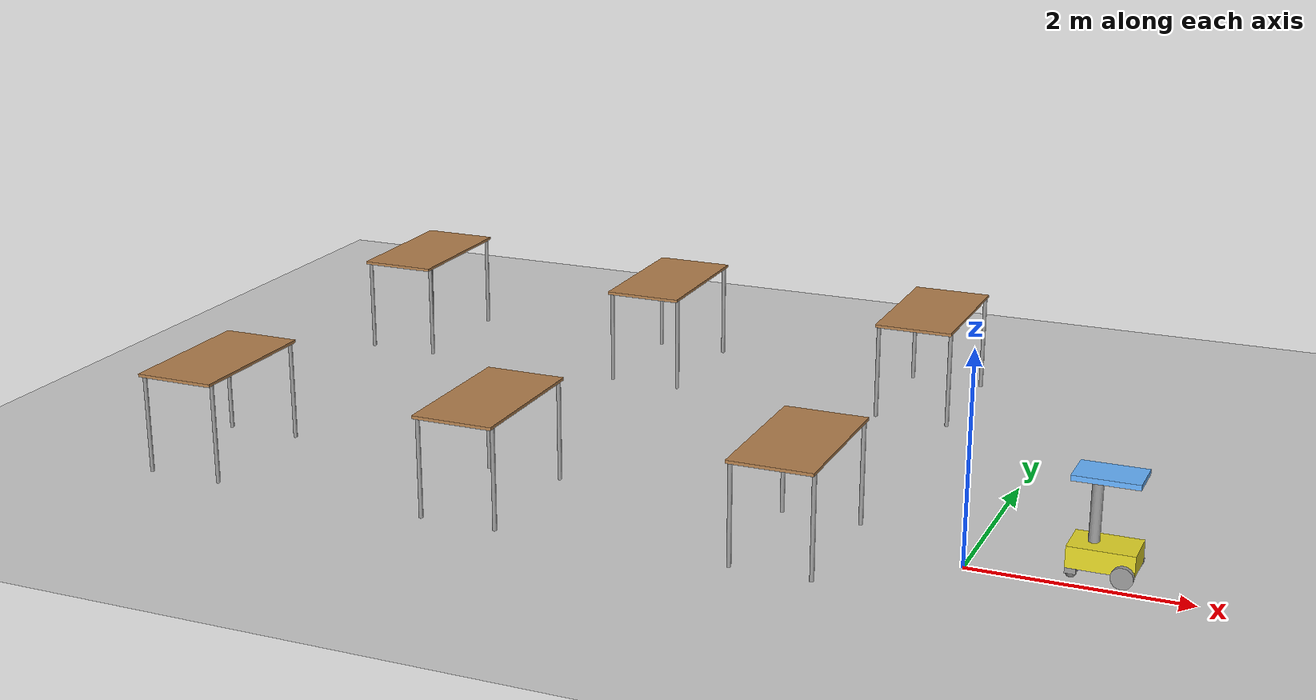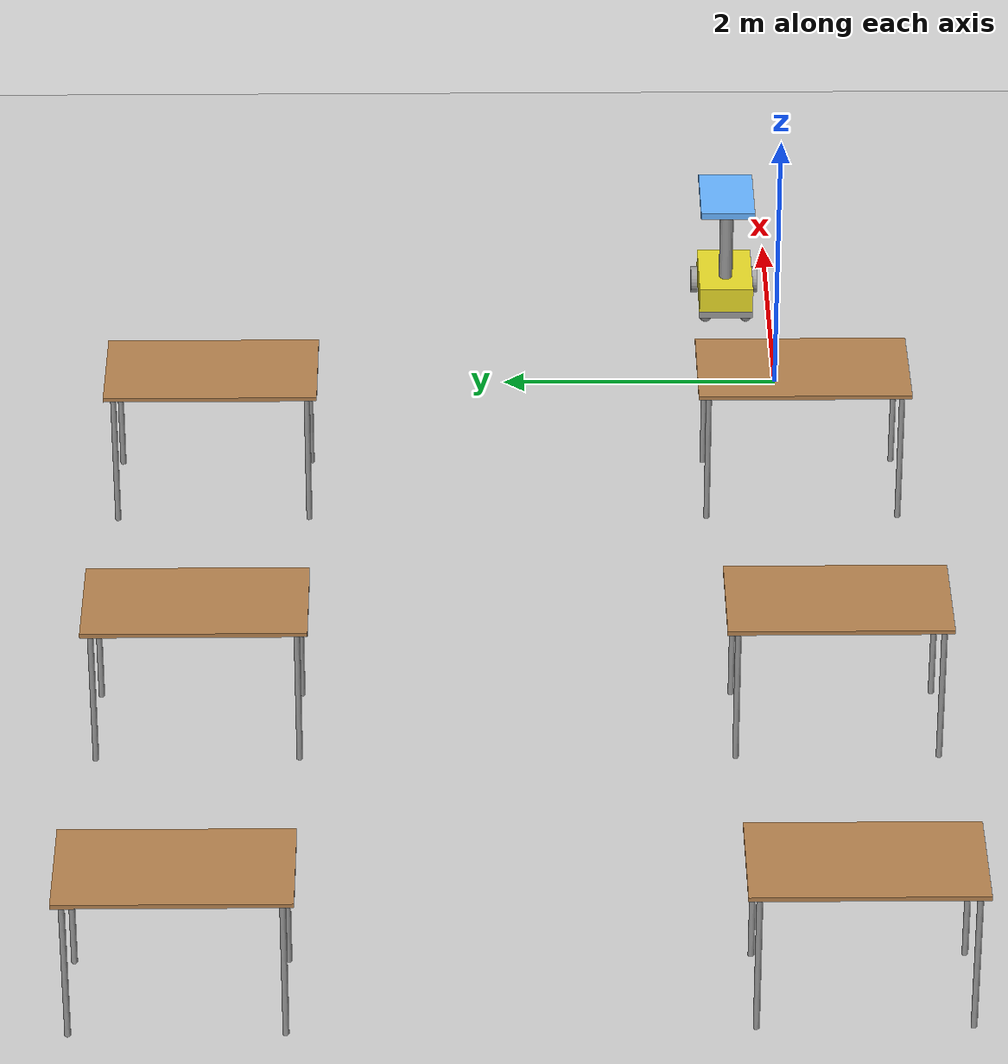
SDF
<sdf version="1.6">
 <world name="default">
  <model name="ground_plane">
   <static>1</static>
   <link name="link">
    <collision name="collision">
     <geometry><plane><normal>0 0 1</normal><size>100 100</size></plane></geometry>
     <surface><friction><ode><mu>100</mu><mu2>50</mu2></ode></friction></surface>
    </collision>
    <visual name="visual">
     <cast_shadows>0</cast_shadows>
     <geometry><plane><normal>0 0 1</normal><size>100 100</size></plane></geometry>
     <material>
      <script><uri>file://media/materials/scripts/gazebo.material</uri><name>Gazebo/Grey</name></script>
     </material>
    </visual>
   </link>
  </model>
  <model name="table">
   <static>1</static>
   <link name="link">
    <collision name="surface">
     <pose>0 0 1 0 -0 0</pose>
     <geometry><box><size>1.5 0.8 0.03</size></box></geometry>
     <surface><friction><ode><mu>0.6</mu><mu2>0.6</mu2></ode></friction></surface>
    </collision>
    <visual name="visual1">
     <pose>0 0 1 0 -0 0</pose>
     <geometry><box><size>1.5 0.8 0.03</size></box></geometry>
     <material>
      <script><uri>file://media/materials/scripts/gazebo.material</uri><name>Gazebo/Wood</name></script>
     </material>
    </visual>
    <collision name="front_left_leg">
     <pose>0.68 0.38 0.5 0 -0 0</pose>
     <geometry><cylinder><radius>0.02</radius><length>1</length></cylinder></geometry>
    </collision>
    <visual name="front_left_leg">
     <pose>0.68 0.38 0.5 0 -0 0</pose>
     <geometry><cylinder><radius>0.02</radius><length>1</length></cylinder></geometry>
     <material>
      <script><uri>file://media/materials/scripts/gazebo.material</uri><name>Gazebo/Grey</name></script>
     </material>
    </visual>
    <collision name="front_right_leg">
     <pose>0.68 -0.38 0.5 0 -0 0</pose>
     <geometry><cylinder><radius>0.02</radius><length>1</length></cylinder></geometry>
    </collision>
    <visual name="front_right_leg">
     <pose>0.68 -0.38 0.5 0 -0 0</pose>
     <geometry><cylinder><radius>0.02</radius><length>1</length></cylinder></geometry>
     <material>
      <script><uri>file://media/materials/scripts/gazebo.material</uri><name>Gazebo/Grey</name></script>
     </material>
    </visual>
    <collision name="back_right_leg">
     <pose>-0.68 -0.38 0.5 0 -0 0</pose>
     <geometry><cylinder><radius>0.02</radius><length>1</length></cylinder></geometry>
    </collision>
    <visual name="back_right_leg">
     <pose>-0.68 -0.38 0.5 0 -0 0</pose>
     <geometry><cylinder><radius>0.02</radius><length>1</length></cylinder></geometry>
     <material>
      <script><uri>file://media/materials/scripts/gazebo.material</uri><name>Gazebo/Grey</name></script>
     </material>
    </visual>
    <collision name="back_left_leg">
     <pose>-0.68 0.38 0.5 0 -0 0</pose>
     <geometry><cylinder><radius>0.02</radius><length>1</length></cylinder></geometry>
    </collision>
    <visual name="back_left_leg">
     <pose>-0.68 0.38 0.5 0 -0 0</pose>
     <geometry><cylinder><radius>0.02</radius><length>1</length></cylinder></geometry>
     <material>
      <script><uri>file://media/materials/scripts/gazebo.material</uri><name>Gazebo/Grey</name></script>
     </material>
    </visual>
   </link>
   <pose>-7.5 4.1 0 0 -0 1.5707</pose>
  </model>
  <model name="table_clone">
   <static>1</static>
   <link name="link">
    <collision name="surface">
     <pose>0 0 1 0 -0 0</pose>
     <geometry><box><size>1.5 0.8 0.03</size></box></geometry>
     <surface><friction><ode><mu>0.6</mu><mu2>0.6</mu2></ode></friction></surface>
    </collision>
    <visual name="visual1">
     <pose>0 0 1 0 -0 0</pose>
     <geometry><box><size>1.5 0.8 0.03</size></box></geometry>
     <material>
      <script><uri>file://media/materials/scripts/gazebo.material</uri><name>Gazebo/Wood</name></script>
     </material>
    </visual>
    <collision name="front_left_leg">
     <pose>0.68 0.38 0.5 0 -0 0</pose>
     <geometry><cylinder><radius>0.02</radius><length>1</length></cylinder></geometry>
    </collision>
    <visual name="front_left_leg">
     <pose>0.68 0.38 0.5 0 -0 0</pose>
     <geometry><cylinder><radius>0.02</radius><length>1</length></cylinder></geometry>
     <material>
      <script><uri>file://media/materials/scripts/gazebo.material</uri><name>Gazebo/Grey</name></script>
     </material>
    </visual>
    <collision name="front_right_leg">
     <pose>0.68 -0.38 0.5 0 -0 0</pose>
     <geometry><cylinder><radius>0.02</radius><length>1</length></cylinder></geometry>
    </collision>
    <visual name="front_right_leg">
     <pose>0.68 -0.38 0.5 0 -0 0</pose>
     <geometry><cylinder><radius>0.02</radius><length>1</length></cylinder></geometry>
     <material>
      <script><uri>file://media/materials/scripts/gazebo.material</uri><name>Gazebo/Grey</name></script>
     </material>
    </visual>
    <collision name="back_right_leg">
     <pose>-0.68 -0.38 0.5 0 -0 0</pose>
     <geometry><cylinder><radius>0.02</radius><length>1</length></cylinder></geometry>
    </collision>
    <visual name="back_right_leg">
     <pose>-0.68 -0.38 0.5 0 -0 0</pose>
     <geometry><cylinder><radius>0.02</radius><length>1</length></cylinder></geometry>
     <material>
      <script><uri>file://media/materials/scripts/gazebo.material</uri><name>Gazebo/Grey</name></script>
     </material>
    </visual>
    <collision name="back_left_leg">
     <pose>-0.68 0.38 0.5 0 -0 0</pose>
     <geometry><cylinder><radius>0.02</radius><length>1</length></cylinder></geometry>
    </collision>
    <visual name="back_left_leg">
     <pose>-0.68 0.38 0.5 0 -0 0</pose>
     <geometry><cylinder><radius>0.02</radius><length>1</length></cylinder></geometry>
     <material>
      <script><uri>file://media/materials/scripts/gazebo.material</uri><name>Gazebo/Grey</name></script>
     </material>
    </visual>
   </link>
   <pose>-4.48568 4.08241 0 0 -0 1.5707</pose>
  </model>
  <model name="table_clone_0">
   <static>1</static>
   <link name="link">
    <collision name="surface">
     <pose>0 0 1 0 -0 0</pose>
     <geometry><box><size>1.5 0.8 0.03</size></box></geometry>
     <surface><friction><ode><mu>0.6</mu><mu2>0.6</mu2></ode></friction></surface>
    </collision>
    <visual name="visual1">
     <pose>0 0 1 0 -0 0</pose>
     <geometry><box><size>1.5 0.8 0.03</size></box></geometry>
     <material>
      <script><uri>file://media/materials/scripts/gazebo.material</uri><name>Gazebo/Wood</name></script>
     </material>
    </visual>
    <collision name="front_left_leg">
     <pose>0.68 0.38 0.5 0 -0 0</pose>
     <geometry><cylinder><radius>0.02</radius><length>1</length></cylinder></geometry>
    </collision>
    <visual name="front_left_leg">
     <pose>0.68 0.38 0.5 0 -0 0</pose>
     <geometry><cylinder><radius>0.02</radius><length>1</length></cylinder></geometry>
     <material>
      <script><uri>file://media/materials/scripts/gazebo.material</uri><name>Gazebo/Grey</name></script>
     </material>
    </visual>
    <collision name="front_right_leg">
     <pose>0.68 -0.38 0.5 0 -0 0</pose>
     <geometry><cylinder><radius>0.02</radius><length>1</length></cylinder></geometry>
    </collision>
    <visual name="front_right_leg">
     <pose>0.68 -0.38 0.5 0 -0 0</pose>
     <geometry><cylinder><radius>0.02</radius><length>1</length></cylinder></geometry>
     <material>
      <script><uri>file://media/materials/scripts/gazebo.material</uri><name>Gazebo/Grey</name></script>
     </material>
    </visual>
    <collision name="back_right_leg">
     <pose>-0.68 -0.38 0.5 0 -0 0</pose>
     <geometry><cylinder><radius>0.02</radius><length>1</length></cylinder></geometry>
    </collision>
    <visual name="back_right_leg">
     <pose>-0.68 -0.38 0.5 0 -0 0</pose>
     <geometry><cylinder><radius>0.02</radius><length>1</length></cylinder></geometry>
     <material>
      <script><uri>file://media/materials/scripts/gazebo.material</uri><name>Gazebo/Grey</name></script>
     </material>
    </visual>
    <collision name="back_left_leg">
     <pose>-0.68 0.38 0.5 0 -0 0</pose>
     <geometry><cylinder><radius>0.02</radius><length>1</length></cylinder></geometry>
    </collision>
    <visual name="back_left_leg">
     <pose>-0.68 0.38 0.5 0 -0 0</pose>
     <geometry><cylinder><radius>0.02</radius><length>1</length></cylinder></geometry>
     <material>
      <script><uri>file://media/materials/scripts/gazebo.material</uri><name>Gazebo/Grey</name></script>
     </material>
    </visual>
   </link>
   <pose>-1.48282 4.08149 0 0 -0 1.5707</pose>
  </model>
  <model name="table_clone_1">
   <static>1</static>
   <link name="link">
    <collision name="surface">
     <pose>0 0 1 0 -0 0</pose>
     <geometry><box><size>1.5 0.8 0.03</size></box></geometry>
     <surface><friction><ode><mu>0.6</mu><mu2>0.6</mu2></ode></friction></surface>
    </collision>
    <visual name="visual1">
     <pose>0 0 1 0 -0 0</pose>
     <geometry><box><size>1.5 0.8 0.03</size></box></geometry>
     <material>
      <script><uri>file://media/materials/scripts/gazebo.material</uri><name>Gazebo/Wood</name></script>
     </material>
    </visual>
    <collision name="front_left_leg">
     <pose>0.68 0.38 0.5 0 -0 0</pose>
     <geometry><cylinder><radius>0.02</radius><length>1</length></cylinder></geometry>
    </collision>
    <visual name="front_left_leg">
     <pose>0.68 0.38 0.5 0 -0 0</pose>
     <geometry><cylinder><radius>0.02</radius><length>1</length></cylinder></geometry>
     <material>
      <script><uri>file://media/materials/scripts/gazebo.material</uri><name>Gazebo/Grey</name></script>
     </material>
    </visual>
    <collision name="front_right_leg">
     <pose>0.68 -0.38 0.5 0 -0 0</pose>
     <geometry><cylinder><radius>0.02</radius><length>1</length></cylinder></geometry>
    </collision>
    <visual name="front_right_leg">
     <pose>0.68 -0.38 0.5 0 -0 0</pose>
     <geometry><cylinder><radius>0.02</radius><length>1</length></cylinder></geometry>
     <material>
      <script><uri>file://media/materials/scripts/gazebo.material</uri><name>Gazebo/Grey</name></script>
     </material>
    </visual>
    <collision name="back_right_leg">
     <pose>-0.68 -0.38 0.5 0 -0 0</pose>
     <geometry><cylinder><radius>0.02</radius><length>1</length></cylinder></geometry>
    </collision>
    <visual name="back_right_leg">
     <pose>-0.68 -0.38 0.5 0 -0 0</pose>
     <geometry><cylinder><radius>0.02</radius><length>1</length></cylinder></geometry>
     <material>
      <script><uri>file://media/materials/scripts/gazebo.material</uri><name>Gazebo/Grey</name></script>
     </material>
    </visual>
    <collision name="back_left_leg">
     <pose>-0.68 0.38 0.5 0 -0 0</pose>
     <geometry><cylinder><radius>0.02</radius><length>1</length></cylinder></geometry>
    </collision>
    <visual name="back_left_leg">
     <pose>-0.68 0.38 0.5 0 -0 0</pose>
     <geometry><cylinder><radius>0.02</radius><length>1</length></cylinder></geometry>
     <material>
      <script><uri>file://media/materials/scripts/gazebo.material</uri><name>Gazebo/Grey</name></script>
     </material>
    </visual>
   </link>
   <pose>-7.46432 -0.193454 0 0 -0 1.5707</pose>
  </model>
  <model name="table_clone_2">
   <static>1</static>
   <link name="link">
    <collision name="surface">
     <pose>0 0 1 0 -0 0</pose>
     <geometry><box><size>1.5 0.8 0.03</size></box></geometry>
     <surface><friction><ode><mu>0.6</mu><mu2>0.6</mu2></ode></friction></surface>
    </collision>
    <visual name="visual1">
     <pose>0 0 1 0 -0 0</pose>
     <geometry><box><size>1.5 0.8 0.03</size></box></geometry>
     <material>
      <script><uri>file://media/materials/scripts/gazebo.material</uri><name>Gazebo/Wood</name></script>
     </material>
    </visual>
    <collision name="front_left_leg">
     <pose>0.68 0.38 0.5 0 -0 0</pose>
     <geometry><cylinder><radius>0.02</radius><length>1</length></cylinder></geometry>
    </collision>
    <visual name="front_left_leg">
     <pose>0.68 0.38 0.5 0 -0 0</pose>
     <geometry><cylinder><radius>0.02</radius><length>1</length></cylinder></geometry>
     <material>
      <script><uri>file://media/materials/scripts/gazebo.material</uri><name>Gazebo/Grey</name></script>
     </material>
    </visual>
    <collision name="front_right_leg">
     <pose>0.68 -0.38 0.5 0 -0 0</pose>
     <geometry><cylinder><radius>0.02</radius><length>1</length></cylinder></geometry>
    </collision>
    <visual name="front_right_leg">
     <pose>0.68 -0.38 0.5 0 -0 0</pose>
     <geometry><cylinder><radius>0.02</radius><length>1</length></cylinder></geometry>
     <material>
      <script><uri>file://media/materials/scripts/gazebo.material</uri><name>Gazebo/Grey</name></script>
     </material>
    </visual>
    <collision name="back_right_leg">
     <pose>-0.68 -0.38 0.5 0 -0 0</pose>
     <geometry><cylinder><radius>0.02</radius><length>1</length></cylinder></geometry>
    </collision>
    <visual name="back_right_leg">
     <pose>-0.68 -0.38 0.5 0 -0 0</pose>
     <geometry><cylinder><radius>0.02</radius><length>1</length></cylinder></geometry>
     <material>
      <script><uri>file://media/materials/scripts/gazebo.material</uri><name>Gazebo/Grey</name></script>
     </material>
    </visual>
    <collision name="back_left_leg">
     <pose>-0.68 0.38 0.5 0 -0 0</pose>
     <geometry><cylinder><radius>0.02</radius><length>1</length></cylinder></geometry>
    </collision>
    <visual name="back_left_leg">
     <pose>-0.68 0.38 0.5 0 -0 0</pose>
     <geometry><cylinder><radius>0.02</radius><length>1</length></cylinder></geometry>
     <material>
      <script><uri>file://media/materials/scripts/gazebo.material</uri><name>Gazebo/Grey</name></script>
     </material>
    </visual>
   </link>
   <pose>-4.49511 -0.186585 0 0 -0 1.5707</pose>
  </model>
  <model name="table_clone_3">
   <static>1</static>
   <link name="link">
    <collision name="surface">
     <pose>0 0 1 0 -0 0</pose>
     <geometry><box><size>1.5 0.8 0.03</size></box></geometry>
     <surface><friction><ode><mu>0.6</mu><mu2>0.6</mu2></ode></friction></surface>
    </collision>
    <visual name="visual1">
     <pose>0 0 1 0 -0 0</pose>
     <geometry><box><size>1.5 0.8 0.03</size></box></geometry>
     <material>
      <script><uri>file://media/materials/scripts/gazebo.material</uri><name>Gazebo/Wood</name></script>
     </material>
    </visual>
    <collision name="front_left_leg">
     <pose>0.68 0.38 0.5 0 -0 0</pose>
     <geometry><cylinder><radius>0.02</radius><length>1</length></cylinder></geometry>
    </collision>
    <visual name="front_left_leg">
     <pose>0.68 0.38 0.5 0 -0 0</pose>
     <geometry><cylinder><radius>0.02</radius><length>1</length></cylinder></geometry>
     <material>
      <script><uri>file://media/materials/scripts/gazebo.material</uri><name>Gazebo/Grey</name></script>
     </material>
    </visual>
    <collision name="front_right_leg">
     <pose>0.68 -0.38 0.5 0 -0 0</pose>
     <geometry><cylinder><radius>0.02</radius><length>1</length></cylinder></geometry>
    </collision>
    <visual name="front_right_leg">
     <pose>0.68 -0.38 0.5 0 -0 0</pose>
     <geometry><cylinder><radius>0.02</radius><length>1</length></cylinder></geometry>
     <material>
      <script><uri>file://media/materials/scripts/gazebo.material</uri><name>Gazebo/Grey</name></script>
     </material>
    </visual>
    <collision name="back_right_leg">
     <pose>-0.68 -0.38 0.5 0 -0 0</pose>
     <geometry><cylinder><radius>0.02</radius><length>1</length></cylinder></geometry>
    </collision>
    <visual name="back_right_leg">
     <pose>-0.68 -0.38 0.5 0 -0 0</pose>
     <geometry><cylinder><radius>0.02</radius><length>1</length></cylinder></geometry>
     <material>
      <script><uri>file://media/materials/scripts/gazebo.material</uri><name>Gazebo/Grey</name></script>
     </material>
    </visual>
    <collision name="back_left_leg">
     <pose>-0.68 0.38 0.5 0 -0 0</pose>
     <geometry><cylinder><radius>0.02</radius><length>1</length></cylinder></geometry>
    </collision>
    <visual name="back_left_leg">
     <pose>-0.68 0.38 0.5 0 -0 0</pose>
     <geometry><cylinder><radius>0.02</radius><length>1</length></cylinder></geometry>
     <material>
      <script><uri>file://media/materials/scripts/gazebo.material</uri><name>Gazebo/Grey</name></script>
     </material>
    </visual>
   </link>
   <pose>-1.49674 -0.105273 0 0 -0 1.5707</pose>
  </model>
  <model name="deliver_robot_5">
   <link name="link_0_clone">
    <pose>-0.002083 -0 0.033333 -0 -0 -0</pose>
    <inertial>
     <mass>1</mass>
     <inertia>
      <ixx>0.166667</ixx>
      <ixy>0</ixy>
      <ixz>0</ixz>
      <iyy>0.166667</iyy>
      <iyz>0</iyz>
      <izz>0.166667</izz>
     </inertia>
    </inertial>
    <visual name="visual">
     <geometry><box><size>0.6 0.4 0.2</size></box></geometry>
     <material>
      <lighting>1</lighting>
      <script><uri>file://media/materials/scripts/gazebo.material</uri><name>Gazebo/Yellow</name></script>
      <shader type="pixel"><normal_map>__default__</normal_map></shader>
      <ambient>0.2 0.8 1 1</ambient>
      <diffuse>0.4 0.7 1 1</diffuse>
      <specular>0.2 0.2 0.2 1</specular>
      <emissive>0 0 0 1</emissive>
     </material>
    </visual>
    <collision name="collision">
     <geometry><box><size>0.6 0.4 0.2</size></box></geometry>
     <surface>
      <friction>
       <ode><mu>1</mu><mu2>1</mu2><fdir1>0 0 0</fdir1><slip1>0</slip1><slip2>0</slip2></ode>
       <torsional>
        <coefficient>1</coefficient>
        <patch_radius>0</patch_radius>
        <surface_radius>0</surface_radius>
        <use_patch_radius>1</use_patch_radius>
        <ode><slip>0</slip></ode>
       </torsional>
      </friction>
      <bounce><restitution_coefficient>0</restitution_coefficient><threshold>1e+06</threshold></bounce>
      <contact>
       <collide_without_contact>0</collide_without_contact>
       <collide_without_contact_bitmask>1</collide_without_contact_bitmask>
       <collide_bitmask>1</collide_bitmask>
       <ode>
        <soft_cfm>0</soft_cfm>
        <soft_erp>0.2</soft_erp>
        <kp>1e+13</kp>
        <kd>1</kd>
        <max_vel>0.01</max_vel>
        <min_depth>0</min_depth>
       </ode>
       <bullet>
        <split_impulse>1</split_impulse>
        <split_impulse_penetration_threshold>-0.01</split_impulse_penetration_threshold>
        <soft_cfm>0</soft_cfm>
        <soft_erp>0.2</soft_erp>
        <kp>1e+13</kp>
        <kd>1</kd>
       </bullet>
      </contact>
     </surface>
    </collision>
   </link>
   <link name="link_1_clone">
    <pose>0.197917 -0.22501 -0.066667 1.5707 -0 0</pose>
    <inertial>
     <mass>1</mass>
     <inertia><ixx>0.145833</ixx><ixy>0</ixy><ixz>0</ixz><iyy>0.145833</iyy><iyz>0</iyz><izz>0.125</izz></inertia>
    </inertial>
    <visual name="visual">
     <geometry><cylinder><radius>0.1</radius><length>0.05</length></cylinder></geometry>
     <material>
      <lighting>1</lighting>
      <script><uri>file://media/materials/scripts/gazebo.material</uri><name>Gazebo/Grey</name></script>
      <shader type="pixel"><normal_map>__default__</normal_map></shader>
      <ambient>0.3 0.3 0.3 1</ambient>
      <diffuse>0.7 0.7 0.7 1</diffuse>
      <specular>0.01 0.01 0.01 1</specular>
      <emissive>0 0 0 1</emissive>
     </material>
    </visual>
    <collision name="collision">
     <geometry><cylinder><radius>0.1</radius><length>0.05</length></cylinder></geometry>
     <surface>
      <friction>
       <ode><mu>1</mu><mu2>1</mu2><fdir1>0 0 0</fdir1><slip1>0</slip1><slip2>0</slip2></ode>
       <torsional>
        <coefficient>1</coefficient>
        <patch_radius>0</patch_radius>
        <surface_radius>0</surface_radius>
        <use_patch_radius>1</use_patch_radius>
        <ode><slip>0</slip></ode>
       </torsional>
      </friction>
      <bounce><restitution_coefficient>0</restitution_coefficient><threshold>1e+06</threshold></bounce>
      <contact>
       <collide_without_contact>0</collide_without_contact>
       <collide_without_contact_bitmask>1</collide_without_contact_bitmask>
       <collide_bitmask>1</collide_bitmask>
       <ode>
        <soft_cfm>0</soft_cfm>
        <soft_erp>0.2</soft_erp>
        <kp>1e+13</kp>
        <kd>1</kd>
        <max_vel>0.01</max_vel>
        <min_depth>0</min_depth>
       </ode>
       <bullet>
        <split_impulse>1</split_impulse>
        <split_impulse_penetration_threshold>-0.01</split_impulse_penetration_threshold>
        <soft_cfm>0</soft_cfm>
        <soft_erp>0.2</soft_erp>
        <kp>1e+13</kp>
        <kd>1</kd>
       </bullet>
      </contact>
     </surface>
    </collision>
   </link>
   <link name="link_1_clone_0">
    <pose>0.197917 0.22501 -0.066667 1.5707 -0 0</pose>
    <inertial>
     <mass>1</mass>
     <inertia><ixx>0.145833</ixx><ixy>0</ixy><ixz>0</ixz><iyy>0.145833</iyy><iyz>0</iyz><izz>0.125</izz></inertia>
    </inertial>
    <visual name="visual">
     <geometry><cylinder><radius>0.1</radius><length>0.05</length></cylinder></geometry>
     <material>
      <lighting>1</lighting>
      <script><uri>file://media/materials/scripts/gazebo.material</uri><name>Gazebo/Grey</name></script>
      <shader type="pixel"><normal_map>__default__</normal_map></shader>
      <ambient>0.3 0.3 0.3 1</ambient>
      <diffuse>0.7 0.7 0.7 1</diffuse>
      <specular>0.01 0.01 0.01 1</specular>
      <emissive>0 0 0 1</emissive>
     </material>
    </visual>
    <collision name="collision">
     <geometry><cylinder><radius>0.1</radius><length>0.05</length></cylinder></geometry>
     <surface>
      <friction>
       <ode><mu>1</mu><mu2>1</mu2><fdir1>0 0 0</fdir1><slip1>0</slip1><slip2>0</slip2></ode>
       <torsional>
        <coefficient>1</coefficient>
        <patch_radius>0</patch_radius>
        <surface_radius>0</surface_radius>
        <use_patch_radius>1</use_patch_radius>
        <ode><slip>0</slip></ode>
       </torsional>
      </friction>
      <bounce><restitution_coefficient>0</restitution_coefficient><threshold>1e+06</threshold></bounce>
      <contact>
       <collide_without_contact>0</collide_without_contact>
       <collide_without_contact_bitmask>1</collide_without_contact_bitmask>
       <collide_bitmask>1</collide_bitmask>
       <ode>
        <soft_cfm>0</soft_cfm>
        <soft_erp>0.2</soft_erp>
        <kp>1e+13</kp>
        <kd>1</kd>
        <max_vel>0.01</max_vel>
        <min_depth>0</min_depth>
       </ode>
       <bullet>
        <split_impulse>1</split_impulse>
        <split_impulse_penetration_threshold>-0.01</split_impulse_penetration_threshold>
        <soft_cfm>0</soft_cfm>
        <soft_erp>0.2</soft_erp>
        <kp>1e+13</kp>
        <kd>1</kd>
       </bullet>
      </contact>
     </surface>
    </collision>
   </link>
   <link name="link_2_clone">
    <pose>-0.252083 -0.15 -0.116667 -0 -0 -0</pose>
    <inertial>
     <mass>1</mass>
     <inertia><ixx>0.1</ixx><ixy>0</ixy><ixz>0</ixz><iyy>0.1</iyy><iyz>0</iyz><izz>0.1</izz></inertia>
    </inertial>
    <visual name="visual">
     <geometry><sphere><radius>0.05</radius></sphere></geometry>
     <material>
      <lighting>1</lighting>
      <script><uri>file://media/materials/scripts/gazebo.material</uri><name>Gazebo/Grey</name></script>
      <shader type="pixel"><normal_map>__default__</normal_map></shader>
      <ambient>1 1 1 1</ambient>
      <diffuse>0.7 0.7 0.7 1</diffuse>
      <specular>0.01 0.01 0.01 1</specular>
      <emissive>0 0 0 1</emissive>
     </material>
    </visual>
    <collision name="collision">
     <geometry><sphere><radius>0.05</radius></sphere></geometry>
     <surface>
      <friction>
       <ode><mu>1</mu><mu2>1</mu2><fdir1>0 0 0</fdir1><slip1>0</slip1><slip2>0</slip2></ode>
       <torsional>
        <coefficient>1</coefficient>
        <patch_radius>0</patch_radius>
        <surface_radius>0</surface_radius>
        <use_patch_radius>1</use_patch_radius>
        <ode><slip>0</slip></ode>
       </torsional>
      </friction>
      <bounce><restitution_coefficient>0</restitution_coefficient><threshold>1e+06</threshold></bounce>
      <contact>
       <collide_without_contact>0</collide_without_contact>
       <collide_without_contact_bitmask>1</collide_without_contact_bitmask>
       <collide_bitmask>1</collide_bitmask>
       <ode>
        <soft_cfm>0</soft_cfm>
        <soft_erp>0.2</soft_erp>
        <kp>1e+13</kp>
        <kd>1</kd>
        <max_vel>0.01</max_vel>
        <min_depth>0</min_depth>
       </ode>
       <bullet>
        <split_impulse>1</split_impulse>
        <split_impulse_penetration_threshold>-0.01</split_impulse_penetration_threshold>
        <soft_cfm>0</soft_cfm>
        <soft_erp>0.2</soft_erp>
        <kp>1e+13</kp>
        <kd>1</kd>
       </bullet>
      </contact>
     </surface>
    </collision>
   </link>
   <link name="link_2_clone_0">
    <pose>-0.252083 0.15 -0.116667 -0 -0 -0</pose>
    <inertial>
     <mass>1</mass>
     <inertia><ixx>0.1</ixx><ixy>0</ixy><ixz>0</ixz><iyy>0.1</iyy><iyz>0</iyz><izz>0.1</izz></inertia>
    </inertial>
    <visual name="visual">
     <geometry><sphere><radius>0.05</radius></sphere></geometry>
     <material>
      <lighting>1</lighting>
      <script><uri>file://media/materials/scripts/gazebo.material</uri><name>Gazebo/Grey</name></script>
      <shader type="pixel"><normal_map>__default__</normal_map></shader>
      <ambient>1 1 1 1</ambient>
      <diffuse>0.7 0.7 0.7 1</diffuse>
      <specular>0.01 0.01 0.01 1</specular>
      <emissive>0 0 0 1</emissive>
     </material>
    </visual>
    <collision name="collision">
     <geometry><sphere><radius>0.05</radius></sphere></geometry>
     <surface>
      <friction>
       <ode><mu>1</mu><mu2>1</mu2><fdir1>0 0 0</fdir1><slip1>0</slip1><slip2>0</slip2></ode>
       <torsional>
        <coefficient>1</coefficient>
        <patch_radius>0</patch_radius>
        <surface_radius>0</surface_radius>
        <use_patch_radius>1</use_patch_radius>
        <ode><slip>0</slip></ode>
       </torsional>
      </friction>
      <bounce><restitution_coefficient>0</restitution_coefficient><threshold>1e+06</threshold></bounce>
      <contact>
       <collide_without_contact>0</collide_without_contact>
       <collide_without_contact_bitmask>1</collide_without_contact_bitmask>
       <collide_bitmask>1</collide_bitmask>
       <ode>
        <soft_cfm>0</soft_cfm>
        <soft_erp>0.2</soft_erp>
        <kp>1e+13</kp>
        <kd>1</kd>
        <max_vel>0.01</max_vel>
        <min_depth>0</min_depth>
       </ode>
       <bullet>
        <split_impulse>1</split_impulse>
        <split_impulse_penetration_threshold>-0.01</split_impulse_penetration_threshold>
        <soft_cfm>0</soft_cfm>
        <soft_erp>0.2</soft_erp>
        <kp>1e+13</kp>
        <kd>1</kd>
       </bullet>
      </contact>
     </surface>
    </collision>
   </link>
   <link name="link_3_clone">
    <pose>-0.252083 -0 -0.091667 -0 -0 -0</pose>
    <inertial>
     <mass>1</mass>
     <inertia>
      <ixx>0.166667</ixx>
      <ixy>0</ixy>
      <ixz>0</ixz>
      <iyy>0.166667</iyy>
      <iyz>0</iyz>
      <izz>0.166667</izz>
     </inertia>
    </inertial>
    <visual name="visual">
     <geometry><box><size>0.1 0.4 0.05</size></box></geometry>
     <material>
      <lighting>1</lighting>
      <script><uri>file://media/materials/scripts/gazebo.material</uri><name>Gazebo/Grey</name></script>
      <shader type="pixel"><normal_map>__default__</normal_map></shader>
      <ambient>0.3 0.3 0.3 1</ambient>
      <diffuse>0.7 0.7 0.7 1</diffuse>
      <specular>0.01 0.01 0.01 1</specular>
      <emissive>0 0 0 1</emissive>
     </material>
    </visual>
    <collision name="collision">
     <geometry><box><size>0.1 0.4 0.05</size></box></geometry>
     <surface>
      <friction>
       <ode><mu>1</mu><mu2>1</mu2><fdir1>0 0 0</fdir1><slip1>0</slip1><slip2>0</slip2></ode>
       <torsional>
        <coefficient>1</coefficient>
        <patch_radius>0</patch_radius>
        <surface_radius>0</surface_radius>
        <use_patch_radius>1</use_patch_radius>
        <ode><slip>0</slip></ode>
       </torsional>
      </friction>
      <bounce><restitution_coefficient>0</restitution_coefficient><threshold>1e+06</threshold></bounce>
      <contact>
       <collide_without_contact>0</collide_without_contact>
       <collide_without_contact_bitmask>1</collide_without_contact_bitmask>
       <collide_bitmask>1</collide_bitmask>
       <ode>
        <soft_cfm>0</soft_cfm>
        <soft_erp>0.2</soft_erp>
        <kp>1e+13</kp>
        <kd>1</kd>
        <max_vel>0.01</max_vel>
        <min_depth>0</min_depth>
       </ode>
       <bullet>
        <split_impulse>1</split_impulse>
        <split_impulse_penetration_threshold>-0.01</split_impulse_penetration_threshold>
        <soft_cfm>0</soft_cfm>
        <soft_erp>0.2</soft_erp>
        <kp>1e+13</kp>
        <kd>1</kd>
       </bullet>
      </contact>
     </surface>
    </collision>
   </link>
   <link name="link_4_clone">
    <pose>-0.002083 -0 0.758333 -0 -0 -0</pose>
    <inertial>
     <mass>1</mass>
     <inertia>
      <ixx>0.166667</ixx>
      <ixy>0</ixy>
      <ixz>0</ixz>
      <iyy>0.166667</iyy>
      <iyz>0</iyz>
      <izz>0.166667</izz>
     </inertia>
    </inertial>
    <visual name="visual">
     <geometry><box><size>0.6 0.4 0.05</size></box></geometry>
     <material>
      <lighting>1</lighting>
      <script><uri>file://media/materials/scripts/gazebo.material</uri><name>Gazebo/Grey</name></script>
      <shader type="pixel"><normal_map>__default__</normal_map></shader>
      <ambient>0.2 0.8 1 1</ambient>
      <diffuse>0.4 0.7 1 1</diffuse>
      <specular>0.2 0.2 0.2 1</specular>
      <emissive>0 0 0 1</emissive>
     </material>
    </visual>
    <collision name="collision">
     <geometry><box><size>0.6 0.4 0.05</size></box></geometry>
     <surface>
      <friction>
       <ode><mu>1</mu><mu2>1</mu2><fdir1>0 0 0</fdir1><slip1>0</slip1><slip2>0</slip2></ode>
       <torsional>
        <coefficient>1</coefficient>
        <patch_radius>0</patch_radius>
        <surface_radius>0</surface_radius>
        <use_patch_radius>1</use_patch_radius>
        <ode><slip>0</slip></ode>
       </torsional>
      </friction>
      <bounce><restitution_coefficient>0</restitution_coefficient><threshold>1e+06</threshold></bounce>
      <contact>
       <collide_without_contact>0</collide_without_contact>
       <collide_without_contact_bitmask>1</collide_without_contact_bitmask>
       <collide_bitmask>1</collide_bitmask>
       <ode>
        <soft_cfm>0</soft_cfm>
        <soft_erp>0.2</soft_erp>
        <kp>1e+13</kp>
        <kd>1</kd>
        <max_vel>0.01</max_vel>
        <min_depth>0</min_depth>
       </ode>
       <bullet>
        <split_impulse>1</split_impulse>
        <split_impulse_penetration_threshold>-0.01</split_impulse_penetration_threshold>
        <soft_cfm>0</soft_cfm>
        <soft_erp>0.2</soft_erp>
        <kp>1e+13</kp>
        <kd>1</kd>
       </bullet>
      </contact>
     </surface>
    </collision>
   </link>
   <link name="link_5_clone">
    <pose>-0.102083 -0 0.433333 -0 -0 -0</pose>
    <inertial>
     <mass>1</mass>
     <inertia><ixx>0.145833</ixx><ixy>0</ixy><ixz>0</ixz><iyy>0.145833</iyy><iyz>0</iyz><izz>0.125</izz></inertia>
    </inertial>
    <visual name="visual">
     <geometry><cylinder><radius>0.05</radius><length>0.6</length></cylinder></geometry>
     <material>
      <lighting>1</lighting>
      <script><uri>file://media/materials/scripts/gazebo.material</uri><name>Gazebo/Grey</name></script>
      <shader type="pixel"><normal_map>__default__</normal_map></shader>
      <ambient>0 0 0 1</ambient>
      <diffuse>0.7 0.7 0.7 1</diffuse>
      <specular>0.01 0.01 0.01 1</specular>
      <emissive>0 0 0 1</emissive>
     </material>
    </visual>
    <collision name="collision">
     <geometry><cylinder><radius>0.05</radius><length>0.6</length></cylinder></geometry>
     <surface>
      <friction>
       <ode><mu>1</mu><mu2>1</mu2><fdir1>0 0 0</fdir1><slip1>0</slip1><slip2>0</slip2></ode>
       <torsional>
        <coefficient>1</coefficient>
        <patch_radius>0</patch_radius>
        <surface_radius>0</surface_radius>
        <use_patch_radius>1</use_patch_radius>
        <ode><slip>0</slip></ode>
       </torsional>
      </friction>
      <bounce><restitution_coefficient>0</restitution_coefficient><threshold>1e+06</threshold></bounce>
      <contact>
       <collide_without_contact>0</collide_without_contact>
       <collide_without_contact_bitmask>1</collide_without_contact_bitmask>
       <collide_bitmask>1</collide_bitmask>
       <ode>
        <soft_cfm>0</soft_cfm>
        <soft_erp>0.2</soft_erp>
        <kp>1e+13</kp>
        <kd>1</kd>
        <max_vel>0.01</max_vel>
        <min_depth>0</min_depth>
       </ode>
       <bullet>
        <split_impulse>1</split_impulse>
        <split_impulse_penetration_threshold>-0.01</split_impulse_penetration_threshold>
        <soft_cfm>0</soft_cfm>
        <soft_erp>0.2</soft_erp>
        <kp>1e+13</kp>
        <kd>1</kd>
       </bullet>
      </contact>
     </surface>
    </collision>
   </link>
   <joint name="link_0_clone_JOINT_0" type="revolute">
    <parent>link_0_clone</parent>
    <child>link_1_clone_0</child>
    <axis>
     <xyz>0 0 1</xyz>
     <use_parent_model_frame>0</use_parent_model_frame>
     <limit>
      <lower>-1.79769e+308</lower>
      <upper>1.79769e+308</upper>
      <effort>-1</effort>
      <velocity>-1</velocity>
     </limit>
     <dynamics>
      <spring_reference>0</spring_reference>
      <spring_stiffness>0</spring_stiffness>
      <damping>0</damping>
      <friction>0</friction>
     </dynamics>
    </axis>
    <physics>
     <ode><limit><cfm>0</cfm><erp>0.2</erp></limit><suspension><cfm>0</cfm><erp>0.2</erp></suspension></ode>
    </physics>
   </joint>
   <joint name="link_0_clone_JOINT_1" type="revolute">
    <parent>link_0_clone</parent>
    <child>link_1_clone</child>
    <axis>
     <xyz>0 0 1</xyz>
     <use_parent_model_frame>0</use_parent_model_frame>
     <limit>
      <lower>-1.79769e+308</lower>
      <upper>1.79769e+308</upper>
      <effort>-1</effort>
      <velocity>-1</velocity>
     </limit>
     <dynamics>
      <spring_reference>0</spring_reference>
      <spring_stiffness>0</spring_stiffness>
      <damping>0</damping>
      <friction>0</friction>
     </dynamics>
    </axis>
    <physics>
     <ode><limit><cfm>0</cfm><erp>0.2</erp></limit><suspension><cfm>0</cfm><erp>0.2</erp></suspension></ode>
    </physics>
   </joint>
   <joint name="link_0_clone_JOINT_5" type="fixed">
    <parent>link_0_clone</parent>
    <child>link_3_clone</child>
    <physics>
     <ode><limit><cfm>0</cfm><erp>0.2</erp></limit><suspension><cfm>0</cfm><erp>0.2</erp></suspension></ode>
    </physics>
   </joint>
   <joint name="link_0_clone_JOINT_8" type="revolute">
    <parent>link_0_clone</parent>
    <child>link_5_clone</child>
    <axis>
     <xyz>0 0 1</xyz>
     <use_parent_model_frame>0</use_parent_model_frame>
     <limit>
      <lower>-1.79769e+308</lower>
      <upper>1.79769e+308</upper>
      <effort>-1</effort>
      <velocity>-1</velocity>
     </limit>
     <dynamics>
      <spring_reference>0</spring_reference>
      <spring_stiffness>0</spring_stiffness>
      <damping>0</damping>
      <friction>0</friction>
     </dynamics>
    </axis>
    <physics>
     <ode><limit><cfm>0</cfm><erp>0.2</erp></limit><suspension><cfm>0</cfm><erp>0.2</erp></suspension></ode>
    </physics>
   </joint>
   <joint name="link_3_clone_JOINT_6" type="ball">
    <parent>link_3_clone</parent>
    <child>link_2_clone</child>
    <physics>
     <ode><limit><cfm>0</cfm><erp>0.2</erp></limit><suspension><cfm>0</cfm><erp>0.2</erp></suspension></ode>
    </physics>
   </joint>
   <joint name="link_3_clone_JOINT_7" type="revolute">
    <parent>link_3_clone</parent>
    <child>link_2_clone_0</child>
    <axis>
     <xyz>1 0 0</xyz>
     <use_parent_model_frame>0</use_parent_model_frame>
     <limit>
      <lower>-1.79769e+308</lower>
      <upper>1.79769e+308</upper>
      <effort>-1</effort>
      <velocity>-1</velocity>
     </limit>
     <dynamics>
      <spring_reference>0</spring_reference>
      <spring_stiffness>0</spring_stiffness>
      <damping>0</damping>
      <friction>0</friction>
     </dynamics>
    </axis>
    <physics>
     <ode><limit><cfm>0</cfm><erp>0.2</erp></limit><suspension><cfm>0</cfm><erp>0.2</erp></suspension></ode>
    </physics>
   </joint>
   <joint name="link_5_clone_JOINT_9" type="fixed">
    <parent>link_5_clone</parent>
    <child>link_4_clone</child>
    <physics>
     <ode><limit><cfm>0</cfm><erp>0.2</erp></limit><suspension><cfm>0</cfm><erp>0.2</erp></suspension></ode>
    </physics>
   </joint>
   <static>0</static>
   <pose>1.14855 0.326653 0.166667 -3e-06 0 -0.001778</pose>
  </model>
 </world>
</sdf>
